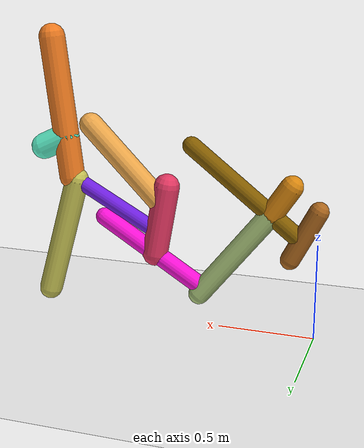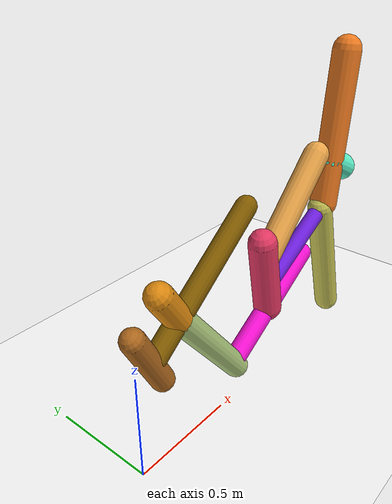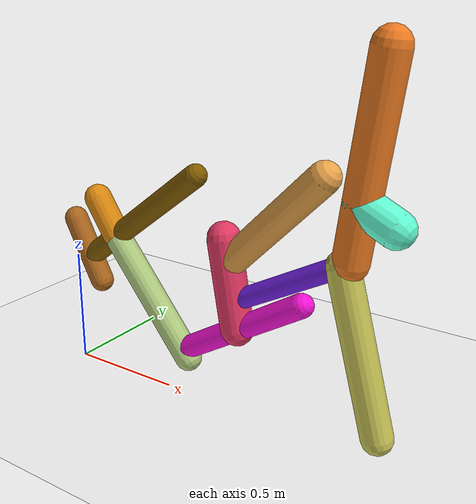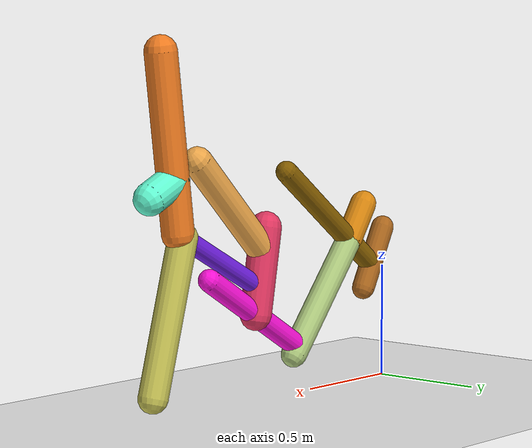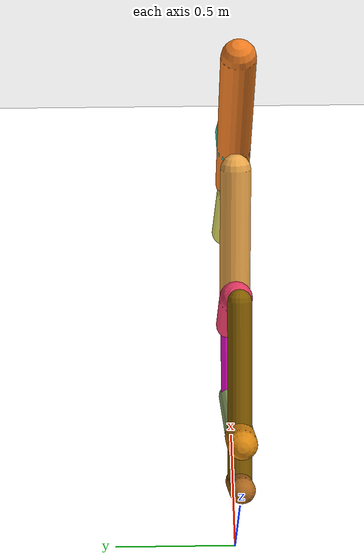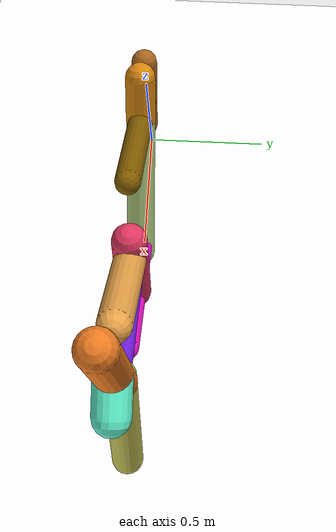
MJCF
<mujoco model="morphology">
  <option timestep="0.01"/>
  <default>
    <default class="/"/>
    <default class="0/"/>
    <default class="0/1/"/>
    <default class="0/1/2/"/>
    <default class="0/1/2/3/"/>
    <default class="0/1/2/3/4/"/>
    <default class="0/1/2/3/4/5/"/>
    <default class="0/1/2/3/4/5/6/"/>
    <default class="0/1/2/3/4/5/7/"/>
    <default class="0/1/2/3/4/5/7/8/"/>
    <default class="0/1/2/3/4/5/7/9/"/>
    <default class="0/1/2/3/4/5/7/9/10/"/>
  </default>
  <asset>
    <texture name="texplane" type="2d" builtin="checker" rgb1="0.10000000000000001 0.20000000000000001 0.29999999999999999" rgb2="0.20000000000000001 0.29999999999999999 0.40000000000000002" width="300" height="300"/>
    <material name="MatPlane" class="/" texture="texplane" texrepeat="20 20" specular="1" shininess="1" reflectance="0.5"/>
  </asset>
  <worldbody>
    <light name="//unnamed_light_0" class="/" directional="true" pos="0 0 1.5" dir="0 0 -1.3" cutoff="100" exponent="1" diffuse="1 1 1" specular="0.10000000000000001 0.10000000000000001 0.10000000000000001"/>
    <geom name="ground" class="/" type="plane" size="15 15 0.5" material="MatPlane" rgba="1 1 1 1"/>
    <site name="body" class="/" size="9.9999999999999995e-07 9.9999999999999995e-07 9.9999999999999995e-07" pos="0 0 0.67340836524963377"/>
    <body pos="0 0 0.67340836524963377" name="0/">
      <joint name="0/rootx/" class="/" type="slide" axis="1 0 0" limited="false" stiffness="0" armature="0" damping="0"/>
      <joint name="0/rootz/" class="/" type="slide" axis="0 0 1" limited="false" stiffness="0" armature="0" damping="0"/>
      <joint name="0/rooty/" class="/" type="hinge" axis="0 1 0" limited="false" stiffness="0" armature="0" damping="0"/>
      <geom name="0/geom" class="0/" type="capsule" contype="1" conaffinity="1" condim="3" size="0.050328541545664664" rgba="0.68071507705376688 0.40639063890228799 0.11659290669728695 1" friction="0.59999999999999998 0.10000000000000001 0.10000000000000001" fromto="0 0 0 0.13600209091416149 0 -0.26338564354756244"/>
      <site name="0/end0" class="0/" size="0.0050000000000000001" pos="0.13600209091416149 0 -0.26338564354756244"/>
      <site name="0/attach1" class="0/" size="9.9999999999999995e-07 9.9999999999999995e-07 9.9999999999999995e-07" pos="0.082271685178043022 0 -0.15932976177577993"/>
      <body pos="0.082271685178043022 0 -0.15932976177577993" name="0/1/">
        <geom name="0/1/geom" class="0/1/" type="capsule" contype="1" conaffinity="1" condim="3" size="0.047053934422800078" rgba="0.51981008981476606 0.36594762281117166 0.0020148984997665487 1" friction="0.59999999999999998 0.10000000000000001 0.10000000000000001" fromto="0 0 0 0.57364173188491518 0 0.44675501019873298"/>
        <site name="0/1/end1" class="0/1/" size="0.0050000000000000001" pos="0.57364173188491518 0 0.44675501019873298"/>
        <site name="0/1/attach2" class="0/1/" size="9.9999999999999995e-07 9.9999999999999995e-07 9.9999999999999995e-07" pos="0.1557186621877383 0 0.12127446217210176"/>
        <body pos="0.1557186621877383 0 0.12127446217210176" name="0/1/2/">
          <joint name="0/1/2/joint/" class="0/1/" type="hinge" axis="0 1 0" limited="true" range="-60.533071738254236 60.533071738254236"/>
          <geom name="0/1/2/geom" class="0/1/2/" type="capsule" contype="1" conaffinity="1" condim="3" size="0.058140613239324929" rgba="0.85803268571937974 0.53334148726257069 0.061582822804849613 1" friction="0.59999999999999998 0.10000000000000001 0.10000000000000001" fromto="0 0 0 -0.099767137385749494 0 0.15292466143011563"/>
          <site name="0/1/2/end2" class="0/1/2/" size="0.0050000000000000001" pos="-0.099767137385749494 0 0.15292466143011563"/>
          <site name="0/1/2/attach3" class="0/1/2/" size="9.9999999999999995e-07 9.9999999999999995e-07 9.9999999999999995e-07" pos="-0.0087463533414408427 0 0.013406550077872149"/>
          <body pos="-0.0087463533414408427 0 0.013406550077872149" name="0/1/2/3/">
            <joint name="0/1/2/3/joint/" class="0/1/2/" type="hinge" axis="0 1 0" limited="true" range="-62.354210265455343 62.354210265455343"/>
            <geom name="0/1/2/3/geom" class="0/1/2/3/" type="capsule" contype="1" conaffinity="1" condim="3" size="0.056444789257470929" rgba="0.68250920541811366 0.79095386917239152 0.49319202315235622 1" friction="0.59999999999999998 0.10000000000000001 0.10000000000000001" fromto="0 0 0 0.38154773097267314 0 -0.47893444131955121"/>
            <site name="0/1/2/3/end3" class="0/1/2/3/" size="0.0050000000000000001" pos="0.38154773097267314 0 -0.47893444131955121"/>
            <site name="0/1/2/3/attach4" class="0/1/2/3/" size="9.9999999999999995e-07 9.9999999999999995e-07 9.9999999999999995e-07" pos="0.35559690492645391 0 -0.44635989463690551"/>
            <body pos="0.35559690492645391 0 -0.44635989463690551" name="0/1/2/3/4/">
              <joint name="0/1/2/3/4/joint/" class="0/1/2/3/" type="hinge" axis="0 1 0" limited="true" range="-45.920924584836534 45.920924584836534"/>
              <geom name="0/1/2/3/4/geom" class="0/1/2/3/4/" type="capsule" contype="1" conaffinity="1" condim="3" size="0.048070272915202168" rgba="0.97773418761251685 0.065947238786376206 0.83936248477908904 1" friction="0.59999999999999998 0.10000000000000001 0.10000000000000001" fromto="0 0 0 0.55206393460358538 0 0.34008396571094468"/>
              <site name="0/1/2/3/4/end4" class="0/1/2/3/4/" size="0.0050000000000000001" pos="0.55206393460358538 0 0.34008396571094468"/>
              <site name="0/1/2/3/4/attach5" class="0/1/2/3/4/" size="9.9999999999999995e-07 9.9999999999999995e-07 9.9999999999999995e-07" pos="0.26995545269027932 0 0.16629871136597021"/>
              <body pos="0.26995545269027932 0 0.16629871136597021" name="0/1/2/3/4/5/">
                <joint name="0/1/2/3/4/5/joint/" class="0/1/2/3/4/" type="hinge" axis="0 1 0" limited="true" range="-55.024598535859894 55.024598535859894"/>
                <geom name="0/1/2/3/4/5/geom" class="0/1/2/3/4/5/" type="capsule" contype="1" conaffinity="1" condim="3" size="0.067155140226702034" rgba="0.89395912404685818 0.2186484923520764 0.38777442961525344 1" friction="0.59999999999999998 0.10000000000000001 0.10000000000000001" fromto="0 0 0 -0.065530751752999938 0 0.36712679338039855"/>
                <site name="0/1/2/3/4/5/end5" class="0/1/2/3/4/5/" size="0.0050000000000000001" pos="-0.065530751752999938 0 0.36712679338039855"/>
                <site name="0/1/2/3/4/5/attach6" class="0/1/2/3/4/5/" size="9.9999999999999995e-07 9.9999999999999995e-07 9.9999999999999995e-07" pos="-0.047055329990105976 0 0.26362084896932775"/>
                <body pos="-0.047055329990105976 0 0.26362084896932775" name="0/1/2/3/4/5/6/">
                  <joint name="0/1/2/3/4/5/6/joint/" class="0/1/2/3/4/5/" type="hinge" axis="0 1 0" limited="true" range="-40.969064754472285 40.969064754472285"/>
                  <geom name="0/1/2/3/4/5/6/geom" class="0/1/2/3/4/5/6/" type="capsule" contype="1" conaffinity="1" condim="3" size="0.061361110773859445" rgba="0.9264583074409789 0.65350787266359212 0.29012912116432843 1" friction="0.59999999999999998 0.10000000000000001 0.10000000000000001" fromto="0 0 0 0.39645151506440635 0 0.40357131864323215"/>
                  <site name="0/1/2/3/4/5/6/end6" class="0/1/2/3/4/5/6/" size="0.0050000000000000001" pos="0.39645151506440635 0 0.40357131864323215"/>
                </body>
                <site name="0/1/2/3/4/5/attach7" class="0/1/2/3/4/5/" size="9.9999999999999995e-07 9.9999999999999995e-07 9.9999999999999995e-07" pos="-0.02042679242190365 0 0.11443822328128878"/>
                <body pos="-0.02042679242190365 0 0.11443822328128878" name="0/1/2/3/4/5/7/">
                  <geom name="0/1/2/3/4/5/7/geom" class="0/1/2/3/4/5/7/" type="capsule" contype="1" conaffinity="1" condim="3" size="0.041111915479862926" rgba="0.4388662016446454 0.12223373008885985 0.87893755154685449 1" friction="0.59999999999999998 0.10000000000000001 0.10000000000000001" fromto="0 0 0 0.50376657279393733 0 0.27525714932829182"/>
                  <site name="0/1/2/3/4/5/7/end7" class="0/1/2/3/4/5/7/" size="0.0050000000000000001" pos="0.50376657279393733 0 0.27525714932829182"/>
                  <site name="0/1/2/3/4/5/7/attach8" class="0/1/2/3/4/5/7/" size="9.9999999999999995e-07 9.9999999999999995e-07 9.9999999999999995e-07" pos="0.45804567099024868 0 0.2502753308138071"/>
                  <body pos="0.45804567099024868 0 0.2502753308138071" name="0/1/2/3/4/5/7/8/">
                    <joint name="0/1/2/3/4/5/7/8/joint/" class="0/1/2/3/4/5/7/" type="hinge" axis="0 1 0" limited="true" range="-64.330394304426108 64.330394304426108"/>
                    <geom name="0/1/2/3/4/5/7/8/geom" class="0/1/2/3/4/5/7/8/" type="capsule" contype="1" conaffinity="1" condim="3" size="0.06216188383796474" rgba="0.77587624327036842 0.75957424139527752 0.33146384643090909 1" friction="0.59999999999999998 0.10000000000000001 0.10000000000000001" fromto="0 0 0 0.17675206884421701 0 -0.63341197430816409"/>
                    <site name="0/1/2/3/4/5/7/8/end8" class="0/1/2/3/4/5/7/8/" size="0.0050000000000000001" pos="0.17675206884421701 0 -0.63341197430816409"/>
                  </body>
                  <site name="0/1/2/3/4/5/7/attach9" class="0/1/2/3/4/5/7/" size="9.9999999999999995e-07 9.9999999999999995e-07 9.9999999999999995e-07" pos="0.48566567350038814 0 0.26536685050955922"/>
                  <body pos="0.48566567350038814 0 0.26536685050955922" name="0/1/2/3/4/5/7/9/">
                    <joint name="0/1/2/3/4/5/7/9/joint/" class="0/1/2/3/4/5/7/" type="hinge" axis="0 1 0" limited="true" range="-35.065002053313499 35.065002053313499"/>
                    <geom name="0/1/2/3/4/5/7/9/geom" class="0/1/2/3/4/5/7/9/" type="capsule" contype="1" conaffinity="1" condim="3" size="0.068079716686979569" rgba="0.93881361397658503 0.48752901101154811 0.13033055593910958 1" friction="0.59999999999999998 0.10000000000000001 0.10000000000000001" fromto="0 0 0 0.090417821141390298 0 0.7338423391335549"/>
                    <site name="0/1/2/3/4/5/7/9/end9" class="0/1/2/3/4/5/7/9/" size="0.0050000000000000001" pos="0.090417821141390298 0 0.7338423391335549"/>
                    <site name="0/1/2/3/4/5/7/9/attach10" class="0/1/2/3/4/5/7/9/" size="9.9999999999999995e-07 9.9999999999999995e-07 9.9999999999999995e-07" pos="0.02661012396181819 0 0.21597109249335153"/>
                    <body pos="0.02661012396181819 0 0.21597109249335153" name="0/1/2/3/4/5/7/9/10/">
                      <geom name="0/1/2/3/4/5/7/9/10/geom" class="0/1/2/3/4/5/7/9/10/" type="capsule" contype="1" conaffinity="1" condim="3" size="0.068805563084360713" rgba="0.38105401949605799 0.98063317737473854 0.82211749129568268 1" friction="0.59999999999999998 0.10000000000000001 0.10000000000000001" fromto="0 0 0 0.1298053188529098 0 -0.062581638537922091"/>
                      <site name="0/1/2/3/4/5/7/9/10/end10" class="0/1/2/3/4/5/7/9/10/" size="0.0050000000000000001" pos="0.1298053188529098 0 -0.062581638537922091"/>
                    </body>
                  </body>
                </body>
              </body>
            </body>
          </body>
        </body>
      </body>
      <camera name="0/side" class="0/" mode="trackcom" pos="0.40000000000000002 -4 0.20000000000000001" quat="0.70699999999999996 0.70699999999999996 0 0"/>
    </body>
  </worldbody>
  <actuator>
    <motor name="0/1/2/motor" class="0/1/2/" ctrllimited="true" ctrlrange="-1 1" gear="71" joint="0/1/2/joint/"/>
    <motor name="0/1/2/3/motor" class="0/1/2/3/" ctrllimited="true" ctrlrange="-1 1" gear="81" joint="0/1/2/3/joint/"/>
    <motor name="0/1/2/3/4/motor" class="0/1/2/3/4/" ctrllimited="true" ctrlrange="-1 1" gear="52" joint="0/1/2/3/4/joint/"/>
    <motor name="0/1/2/3/4/5/motor" class="0/1/2/3/4/5/" ctrllimited="true" ctrlrange="-1 1" gear="82" joint="0/1/2/3/4/5/joint/"/>
    <motor name="0/1/2/3/4/5/6/motor" class="0/1/2/3/4/5/6/" ctrllimited="true" ctrlrange="-1 1" gear="86" joint="0/1/2/3/4/5/6/joint/"/>
    <motor name="0/1/2/3/4/5/7/8/motor" class="0/1/2/3/4/5/7/8/" ctrllimited="true" ctrlrange="-1 1" gear="64" joint="0/1/2/3/4/5/7/8/joint/"/>
    <motor name="0/1/2/3/4/5/7/9/motor" class="0/1/2/3/4/5/7/9/" ctrllimited="true" ctrlrange="-1 1" gear="70" joint="0/1/2/3/4/5/7/9/joint/"/>
  </actuator>
  <sensor>
    <subtreelinvel name="velocity" body="0/"/>
  </sensor>
</mujoco>
